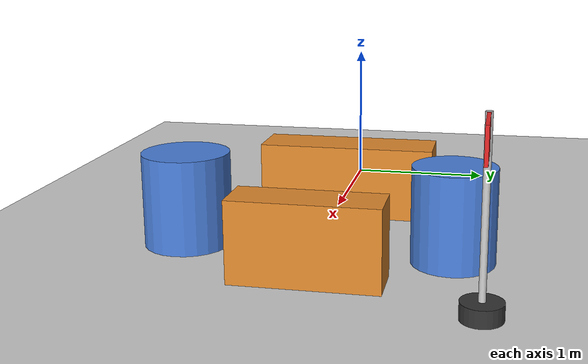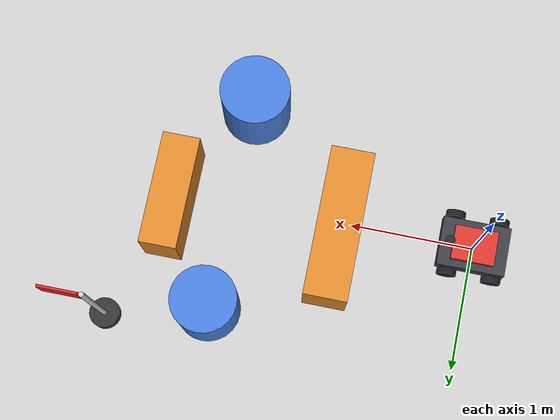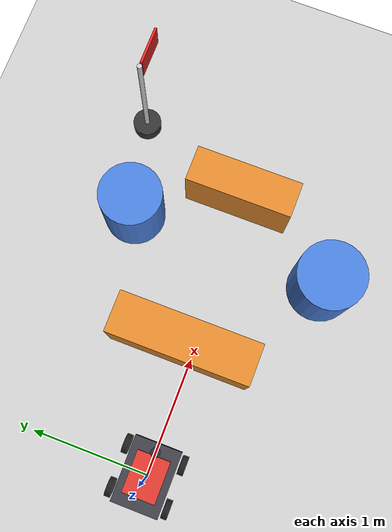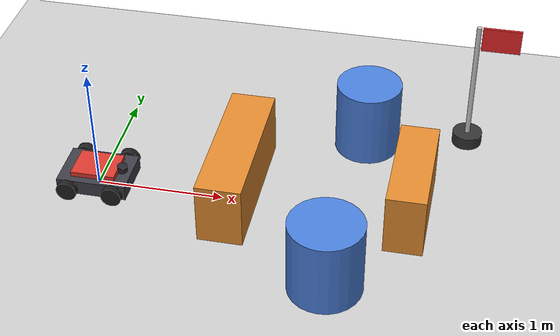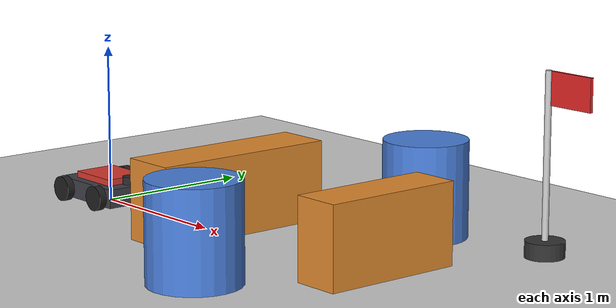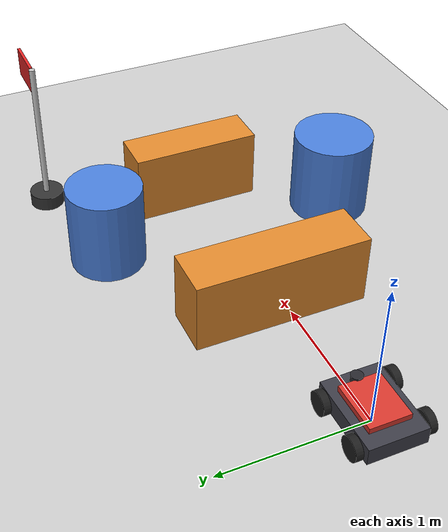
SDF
<?xml version="1.0"?>
<sdf version="1.9">
  <world name="kibot_one_obstacles_world">
    <gravity>0 0 -9.8</gravity>

    <plugin
      filename="gz-sim-physics-system"
      name="gz::sim::systems::Physics"/>
    <plugin
      filename="gz-sim-user-commands-system"
      name="gz::sim::systems::UserCommands"/>
    <plugin
      filename="gz-sim-scene-broadcaster-system"
      name="gz::sim::systems::SceneBroadcaster"/>
    <plugin
      filename="gz-sim-sensors-system"
      name="gz::sim::systems::Sensors">
      <render_engine>ogre2</render_engine>
    </plugin>

    <physics name="physics" type="dart">
      <max_step_size>0.004</max_step_size>
      <real_time_factor>1.0</real_time_factor>
    </physics>

    <scene>
      <ambient>0.6 0.6 0.6 1</ambient>
      <background>0.8 0.8 0.8 1</background>
    </scene>

    <light name="sun" type="directional">
      <cast_shadows>true</cast_shadows>
      <pose>0 0 10 0 0 0</pose>
      <diffuse>0.8 0.8 0.8 1</diffuse>
      <specular>0.2 0.2 0.2 1</specular>
      <attenuation>
        <range>1000</range>
        <constant>0.9</constant>
        <linear>0.01</linear>
        <quadratic>0.001</quadratic>
      </attenuation>
      <direction>-0.5 0.1 -0.9</direction>
    </light>

    <model name="ground_plane">
      <static>true</static>
      <link name="link">
        <collision name="collision">
          <geometry>
            <plane>
              <normal>0 0 1</normal>
              <size>100 100</size>
            </plane>
          </geometry>
        </collision>
        <visual name="visual">
          <geometry>
            <plane>
              <normal>0 0 1</normal>
              <size>100 100</size>
            </plane>
          </geometry>
          <material>
            <ambient>0.8 0.8 0.8 1</ambient>
            <diffuse>0.8 0.8 0.8 1</diffuse>
            <specular>0.1 0.1 0.1 1</specular>
          </material>
        </visual>
      </link>
    </model>

    <include>
      <uri>model://kibot_one_base</uri>
      <pose>0 0 0 0 0 0</pose>
    </include>

    <include>
      <uri>model://follow_flag</uri>
      <pose>2.8 1.1 0 0 0 0</pose>
    </include>

    <model name="obstacle_box_1">
      <static>true</static>
      <pose>1.10 0.10 0.25 0 0 0</pose>
      <link name="body">
        <collision name="collision">
          <geometry>
            <box>
              <size>0.35 1.20 0.50</size>
            </box>
          </geometry>
        </collision>
        <visual name="visual">
          <geometry>
            <box>
              <size>0.35 1.20 0.50</size>
            </box>
          </geometry>
          <material>
            <ambient>0.80 0.48 0.12 1</ambient>
            <diffuse>0.88 0.54 0.18 1</diffuse>
            <specular>0.06 0.06 0.06 1</specular>
          </material>
        </visual>
      </link>
    </model>

    <model name="obstacle_cylinder_1">
      <static>true</static>
      <pose>1.95 -0.80 0.30 0 0 0</pose>
      <link name="body">
        <collision name="collision">
          <geometry>
            <cylinder>
              <radius>0.28</radius>
              <length>0.60</length>
            </cylinder>
          </geometry>
        </collision>
        <visual name="visual">
          <geometry>
            <cylinder>
              <radius>0.28</radius>
              <length>0.60</length>
            </cylinder>
          </geometry>
          <material>
            <ambient>0.24 0.43 0.78 1</ambient>
            <diffuse>0.29 0.50 0.86 1</diffuse>
            <specular>0.08 0.08 0.08 1</specular>
          </material>
        </visual>
      </link>
    </model>

    <model name="obstacle_cylinder_2">
      <static>true</static>
      <pose>2.00 0.90 0.30 0 0 0</pose>
      <link name="body">
        <collision name="collision">
          <geometry>
            <cylinder>
              <radius>0.26</radius>
              <length>0.60</length>
            </cylinder>
          </geometry>
        </collision>
        <visual name="visual">
          <geometry>
            <cylinder>
              <radius>0.26</radius>
              <length>0.60</length>
            </cylinder>
          </geometry>
          <material>
            <ambient>0.24 0.43 0.78 1</ambient>
            <diffuse>0.29 0.50 0.86 1</diffuse>
            <specular>0.08 0.08 0.08 1</specular>
          </material>
        </visual>
      </link>
    </model>

    <model name="obstacle_box_2">
      <static>true</static>
      <pose>2.45 0.10 0.25 0 0 0</pose>
      <link name="body">
        <collision name="collision">
          <geometry>
            <box>
              <size>0.30 0.90 0.50</size>
            </box>
          </geometry>
        </collision>
        <visual name="visual">
          <geometry>
            <box>
              <size>0.30 0.90 0.50</size>
            </box>
          </geometry>
          <material>
            <ambient>0.80 0.48 0.12 1</ambient>
            <diffuse>0.88 0.54 0.18 1</diffuse>
            <specular>0.06 0.06 0.06 1</specular>
          </material>
        </visual>
      </link>
    </model>
  </world>
</sdf>

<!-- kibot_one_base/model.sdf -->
<sdf version="1.9">
  <model name="kibot_one_base">
    <pose>0 0 0.12 0 0 0</pose>
    <self_collide>false</self_collide>

    <link name="chassis">
      <pose>0 0 0.08 0 0 0</pose>
      <inertial>
        <mass>12.0</mass>
        <inertia>
          <ixx>0.18</ixx>
          <ixy>0.0</ixy>
          <ixz>0.0</ixz>
          <iyy>0.38</iyy>
          <iyz>0.0</iyz>
          <izz>0.50</izz>
        </inertia>
      </inertial>
      <collision name="chassis_collision">
        <geometry>
          <box>
            <size>0.55 0.40 0.12</size>
          </box>
        </geometry>
      </collision>
      <visual name="chassis_visual">
        <geometry>
          <box>
            <size>0.55 0.40 0.12</size>
          </box>
        </geometry>
        <material>
          <ambient>0.18 0.18 0.20 1</ambient>
          <diffuse>0.24 0.24 0.28 1</diffuse>
          <specular>0.05 0.05 0.05 1</specular>
        </material>
      </visual>
      <visual name="deck_visual">
        <pose>0 0 0.08 0 0 0</pose>
        <geometry>
          <box>
            <size>0.35 0.28 0.04</size>
          </box>
        </geometry>
        <material>
          <ambient>0.75 0.18 0.12 1</ambient>
          <diffuse>0.85 0.22 0.18 1</diffuse>
          <specular>0.08 0.08 0.08 1</specular>
        </material>
      </visual>
    </link>

    <link name="front_left_wheel">
      <pose>0.18 0.24 0.08 1.5708 0 0</pose>
      <inertial>
        <mass>1.0</mass>
        <inertia>
          <ixx>0.0026</ixx>
          <ixy>0.0</ixy>
          <ixz>0.0</ixz>
          <iyy>0.0026</iyy>
          <iyz>0.0</iyz>
          <izz>0.0045</izz>
        </inertia>
      </inertial>
      <collision name="front_left_wheel_collision">
        <geometry>
          <cylinder>
            <radius>0.08</radius>
            <length>0.05</length>
          </cylinder>
        </geometry>
        <surface>
          <friction>
            <ode>
              <mu>1.2</mu>
              <mu2>1.2</mu2>
            </ode>
          </friction>
        </surface>
      </collision>
      <visual name="front_left_wheel_visual">
        <geometry>
          <cylinder>
            <radius>0.08</radius>
            <length>0.05</length>
          </cylinder>
        </geometry>
        <material>
          <ambient>0.08 0.08 0.08 1</ambient>
          <diffuse>0.12 0.12 0.12 1</diffuse>
          <specular>0.01 0.01 0.01 1</specular>
        </material>
      </visual>
    </link>

    <link name="front_right_wheel">
      <pose>0.18 -0.24 0.08 1.5708 0 0</pose>
      <inertial>
        <mass>1.0</mass>
        <inertia>
          <ixx>0.0026</ixx>
          <ixy>0.0</ixy>
          <ixz>0.0</ixz>
          <iyy>0.0026</iyy>
          <iyz>0.0</iyz>
          <izz>0.0045</izz>
        </inertia>
      </inertial>
      <collision name="front_right_wheel_collision">
        <geometry>
          <cylinder>
            <radius>0.08</radius>
            <length>0.05</length>
          </cylinder>
        </geometry>
        <surface>
          <friction>
            <ode>
              <mu>1.2</mu>
              <mu2>1.2</mu2>
            </ode>
          </friction>
        </surface>
      </collision>
      <visual name="front_right_wheel_visual">
        <geometry>
          <cylinder>
            <radius>0.08</radius>
            <length>0.05</length>
          </cylinder>
        </geometry>
        <material>
          <ambient>0.08 0.08 0.08 1</ambient>
          <diffuse>0.12 0.12 0.12 1</diffuse>
          <specular>0.01 0.01 0.01 1</specular>
        </material>
      </visual>
    </link>

    <link name="rear_left_wheel">
      <pose>-0.18 0.24 0.08 1.5708 0 0</pose>
      <inertial>
        <mass>1.0</mass>
        <inertia>
          <ixx>0.0026</ixx>
          <ixy>0.0</ixy>
          <ixz>0.0</ixz>
          <iyy>0.0026</iyy>
          <iyz>0.0</iyz>
          <izz>0.0045</izz>
        </inertia>
      </inertial>
      <collision name="rear_left_wheel_collision">
        <geometry>
          <cylinder>
            <radius>0.08</radius>
            <length>0.05</length>
          </cylinder>
        </geometry>
        <surface>
          <friction>
            <ode>
              <mu>1.2</mu>
              <mu2>1.2</mu2>
            </ode>
          </friction>
        </surface>
      </collision>
      <visual name="rear_left_wheel_visual">
        <geometry>
          <cylinder>
            <radius>0.08</radius>
            <length>0.05</length>
          </cylinder>
        </geometry>
        <material>
          <ambient>0.08 0.08 0.08 1</ambient>
          <diffuse>0.12 0.12 0.12 1</diffuse>
          <specular>0.01 0.01 0.01 1</specular>
        </material>
      </visual>
    </link>

    <link name="rear_right_wheel">
      <pose>-0.18 -0.24 0.08 1.5708 0 0</pose>
      <inertial>
        <mass>1.0</mass>
        <inertia>
          <ixx>0.0026</ixx>
          <ixy>0.0</ixy>
          <ixz>0.0</ixz>
          <iyy>0.0026</iyy>
          <iyz>0.0</iyz>
          <izz>0.0045</izz>
        </inertia>
      </inertial>
      <collision name="rear_right_wheel_collision">
        <geometry>
          <cylinder>
            <radius>0.08</radius>
            <length>0.05</length>
          </cylinder>
        </geometry>
        <surface>
          <friction>
            <ode>
              <mu>1.2</mu>
              <mu2>1.2</mu2>
            </ode>
          </friction>
        </surface>
      </collision>
      <visual name="rear_right_wheel_visual">
        <geometry>
          <cylinder>
            <radius>0.08</radius>
            <length>0.05</length>
          </cylinder>
        </geometry>
        <material>
          <ambient>0.08 0.08 0.08 1</ambient>
          <diffuse>0.12 0.12 0.12 1</diffuse>
          <specular>0.01 0.01 0.01 1</specular>
        </material>
      </visual>
    </link>

    <link name="lidar_link">
      <pose>0.20 0 0.165 0 0 0</pose>
      <inertial>
        <mass>0.20</mass>
        <inertia>
          <ixx>0.0005</ixx>
          <ixy>0.0</ixy>
          <ixz>0.0</ixz>
          <iyy>0.0005</iyy>
          <iyz>0.0</iyz>
          <izz>0.0005</izz>
        </inertia>
      </inertial>
      <collision name="lidar_collision">
        <geometry>
          <cylinder>
            <radius>0.04</radius>
            <length>0.05</length>
          </cylinder>
        </geometry>
      </collision>
      <visual name="lidar_visual">
        <geometry>
          <cylinder>
            <radius>0.04</radius>
            <length>0.05</length>
          </cylinder>
        </geometry>
        <material>
          <ambient>0.10 0.10 0.12 1</ambient>
          <diffuse>0.16 0.16 0.18 1</diffuse>
          <specular>0.05 0.05 0.05 1</specular>
        </material>
      </visual>
      <sensor name="top_lidar" type="gpu_lidar">
        <topic>/scan</topic>
        <update_rate>20</update_rate>
        <always_on>true</always_on>
        <visualize>true</visualize>
        <gz_frame_id>lidar_link</gz_frame_id>
        <lidar>
          <scan>
            <horizontal>
              <samples>720</samples>
              <resolution>1</resolution>
              <min_angle>-3.14159</min_angle>
              <max_angle>3.14159</max_angle>
            </horizontal>
          </scan>
          <range>
            <min>0.12</min>
            <max>12.0</max>
            <resolution>0.01</resolution>
          </range>
          <noise>
            <type>gaussian</type>
            <mean>0.0</mean>
            <stddev>0.005</stddev>
          </noise>
        </lidar>
      </sensor>
    </link>

    <joint name="front_left_wheel_joint" type="revolute">
      <parent>chassis</parent>
      <child>front_left_wheel</child>
      <axis>
        <xyz expressed_in="__model__">0 1 0</xyz>
        <limit>
          <lower>-1e16</lower>
          <upper>1e16</upper>
        </limit>
        <dynamics>
          <damping>0.2</damping>
          <friction>0.05</friction>
        </dynamics>
      </axis>
    </joint>

    <joint name="front_right_wheel_joint" type="revolute">
      <parent>chassis</parent>
      <child>front_right_wheel</child>
      <axis>
        <xyz expressed_in="__model__">0 1 0</xyz>
        <limit>
          <lower>-1e16</lower>
          <upper>1e16</upper>
        </limit>
        <dynamics>
          <damping>0.2</damping>
          <friction>0.05</friction>
        </dynamics>
      </axis>
    </joint>

    <joint name="rear_left_wheel_joint" type="revolute">
      <parent>chassis</parent>
      <child>rear_left_wheel</child>
      <axis>
        <xyz expressed_in="__model__">0 1 0</xyz>
        <limit>
          <lower>-1e16</lower>
          <upper>1e16</upper>
        </limit>
        <dynamics>
          <damping>0.2</damping>
          <friction>0.05</friction>
        </dynamics>
      </axis>
    </joint>

    <joint name="rear_right_wheel_joint" type="revolute">
      <parent>chassis</parent>
      <child>rear_right_wheel</child>
      <axis>
        <xyz expressed_in="__model__">0 1 0</xyz>
        <limit>
          <lower>-1e16</lower>
          <upper>1e16</upper>
        </limit>
        <dynamics>
          <damping>0.2</damping>
          <friction>0.05</friction>
        </dynamics>
      </axis>
    </joint>

    <joint name="lidar_joint" type="fixed">
      <parent>chassis</parent>
      <child>lidar_link</child>
    </joint>

    <plugin
      filename="gz-sim-pose-publisher-system"
      name="gz::sim::systems::PosePublisher">
      <publish_model_pose>true</publish_model_pose>
      <publish_link_pose>false</publish_link_pose>
      <use_pose_vector_msg>false</use_pose_vector_msg>
      <static_publisher>false</static_publisher>
      <update_frequency>20</update_frequency>
    </plugin>

    <plugin
      filename="gz-sim-diff-drive-system"
      name="gz::sim::systems::DiffDrive">
      <left_joint>front_left_wheel_joint</left_joint>
      <left_joint>rear_left_wheel_joint</left_joint>
      <right_joint>front_right_wheel_joint</right_joint>
      <right_joint>rear_right_wheel_joint</right_joint>

      <wheel_separation>0.48</wheel_separation>
      <wheel_radius>0.08</wheel_radius>

      <topic>/model/kibot_one_base/cmd_vel</topic>
      <odom_topic>/model/kibot_one_base/odometry</odom_topic>
      <tf_topic>/model/kibot_one_base/tf</tf_topic>

      <frame_id>odom</frame_id>
      <child_frame_id>chassis</child_frame_id>

      <odom_publish_frequency>50</odom_publish_frequency>

      <max_linear_velocity>0.8</max_linear_velocity>
      <max_angular_velocity>1.5</max_angular_velocity>
      <max_linear_acceleration>0.8</max_linear_acceleration>
      <max_angular_acceleration>1.5</max_angular_acceleration>
    </plugin>

  </model>
</sdf>

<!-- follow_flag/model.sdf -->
<sdf version="1.9">
  <model name="follow_flag">
    <static>true</static>

    <plugin
      filename="gz-sim-pose-publisher-system"
      name="gz::sim::systems::PosePublisher">
      <publish_model_pose>true</publish_model_pose>
      <publish_link_pose>false</publish_link_pose>
      <use_pose_vector_msg>false</use_pose_vector_msg>
      <static_publisher>false</static_publisher>
      <update_frequency>10</update_frequency>
    </plugin>

    <link name="flag_base">
      <collision name="base_collision">
        <pose>0 0 0.05 0 0 0</pose>
        <geometry>
          <cylinder>
            <radius>0.12</radius>
            <length>0.10</length>
          </cylinder>
        </geometry>
      </collision>
      <visual name="base_visual">
        <pose>0 0 0.05 0 0 0</pose>
        <geometry>
          <cylinder>
            <radius>0.12</radius>
            <length>0.10</length>
          </cylinder>
        </geometry>
        <material>
          <ambient>0.15 0.15 0.15 1</ambient>
          <diffuse>0.20 0.20 0.20 1</diffuse>
          <specular>0.02 0.02 0.02 1</specular>
        </material>
      </visual>

      <collision name="pole_collision">
        <pose>0 0 0.60 0 0 0</pose>
        <geometry>
          <cylinder>
            <radius>0.02</radius>
            <length>1.00</length>
          </cylinder>
        </geometry>
      </collision>
      <visual name="pole_visual">
        <pose>0 0 0.60 0 0 0</pose>
        <geometry>
          <cylinder>
            <radius>0.02</radius>
            <length>1.00</length>
          </cylinder>
        </geometry>
        <material>
          <ambient>0.70 0.70 0.70 1</ambient>
          <diffuse>0.80 0.80 0.80 1</diffuse>
          <specular>0.05 0.05 0.05 1</specular>
        </material>
      </visual>

      <visual name="flag_visual">
        <pose>0.18 0 1.00 0 0 0</pose>
        <geometry>
          <box>
            <size>0.30 0.02 0.20</size>
          </box>
        </geometry>
        <material>
          <ambient>0.80 0.10 0.10 1</ambient>
          <diffuse>0.90 0.15 0.15 1</diffuse>
          <specular>0.08 0.08 0.08 1</specular>
        </material>
      </visual>
    </link>
  </model>
</sdf>
